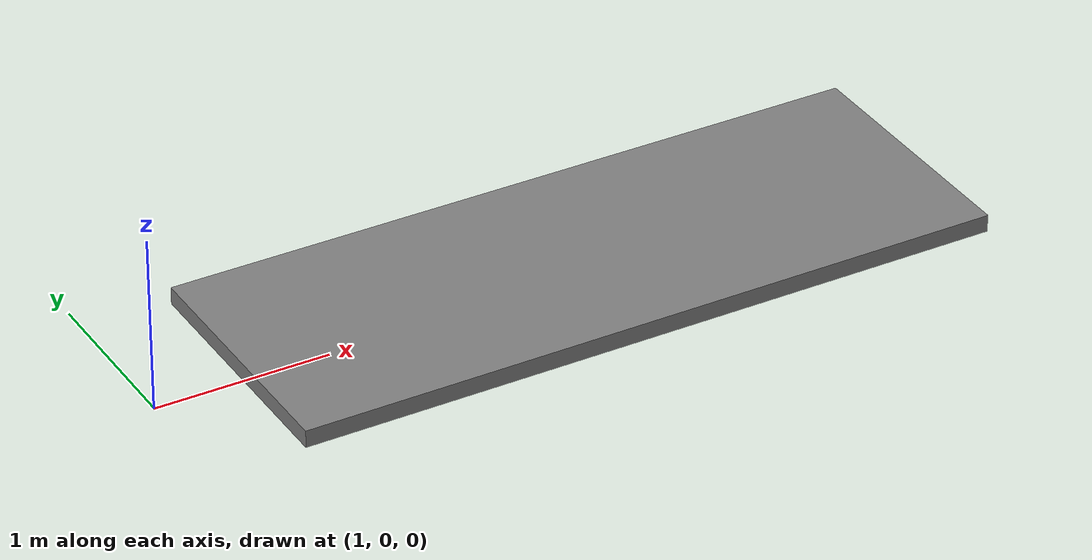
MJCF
<mujoco model="go2 scene">

  <statistic center="0 0 0.1" extent="0.8" />

  <visual>
    <headlight diffuse="0.6 0.6 0.6" ambient="0.3 0.3 0.3" specular="0 0 0" />
    <rgba haze="0.15 0.25 0.35 1" />
    <global azimuth="-130" elevation="-20" />
  </visual>

  <asset>
    <texture type="skybox" builtin="gradient" rgb1="0.3 0.5 0.7" rgb2="0 0 0" width="512" height="3072" />

  </asset>

  <worldbody>
  <geom pos="3.5 0 0.104" type="box" size="2.03 0.75 0.05" quat="1.0 0.0 0.0 0.0" /></worldbody>
</mujoco>
